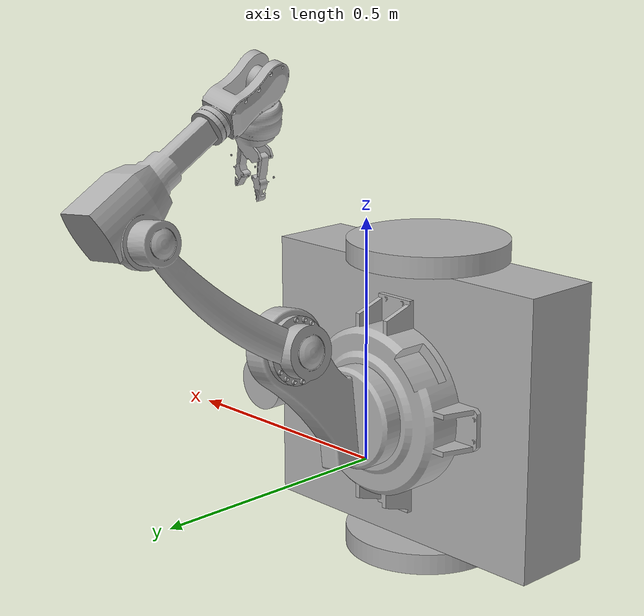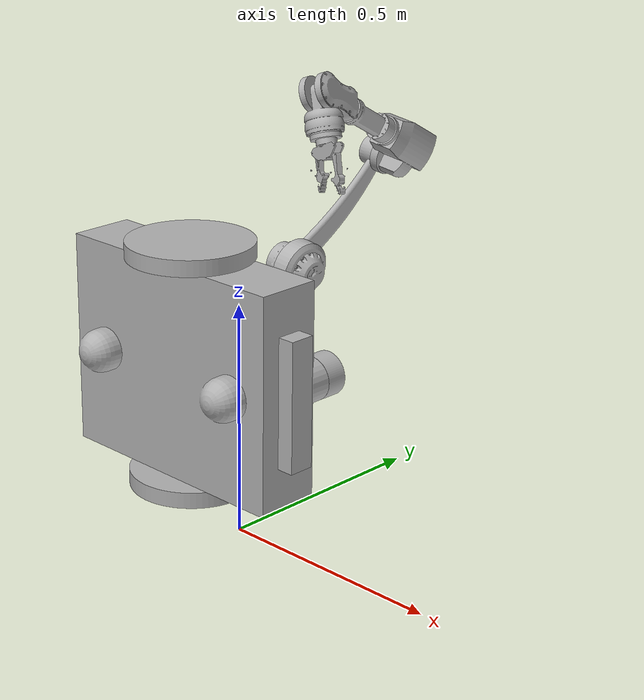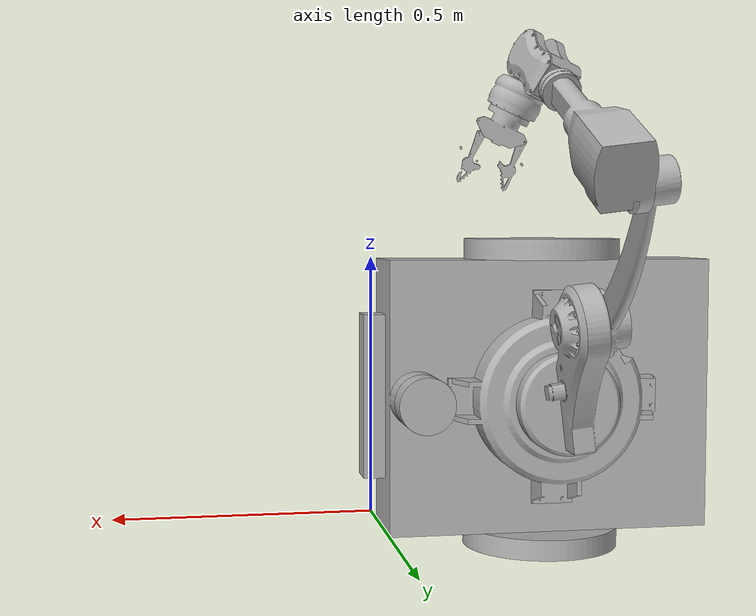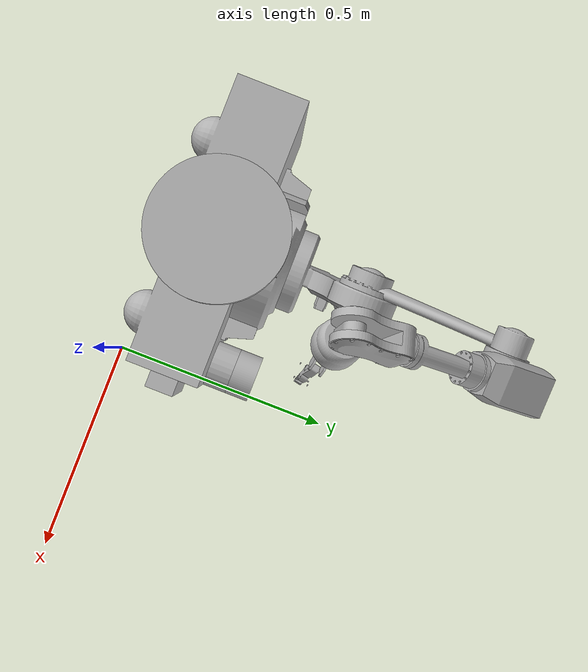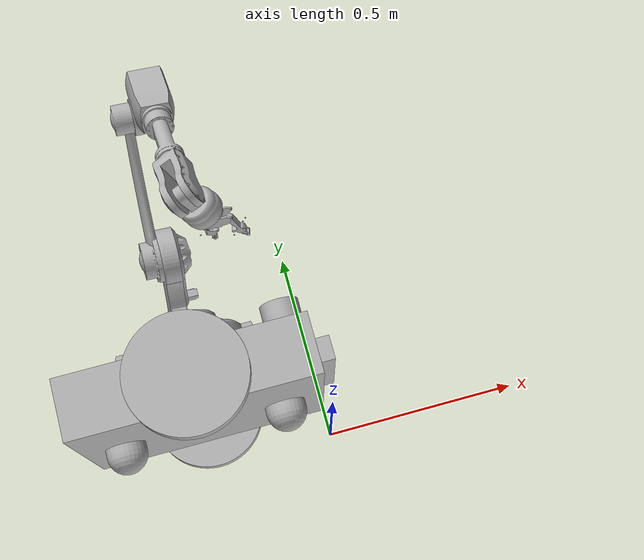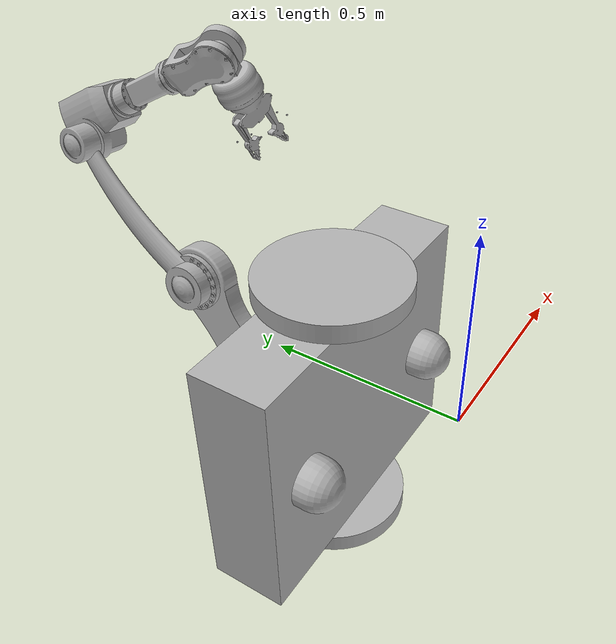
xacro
<?xml version="1.0" ?>
<robot name="moodz_V3" xmlns:xacro="http://www.ros.org/wiki/xacro">

<xacro:include filename="$(find moodz_V3_description)/urdf/materials.xacro" />
<xacro:include filename="$(find moodz_V3_description)/urdf/moodz_V3.trans" />
<xacro:include filename="$(find moodz_V3_description)/urdf/moodz_V3.gazebo" />
<link name="base_link">
  <inertial>
    <origin rpy="0 0 0" xyz="-0.46581722808526116 0.08938415217570221 0.18085867117796395"/>
    <mass value="48.99670859933122"/>
    <inertia ixx="1.097685" ixy="-0.01051" ixz="-6.1e-05" iyy="2.487245" iyz="-2.5e-05" izz="1.595947"/>
  </inertial>
  <visual>
    <origin rpy="0 0 0" xyz="0 0 0"/>
    <geometry>
      <mesh filename="package://moodz_V3_description/meshes/base_link.stl" scale="0.001 0.001 0.001"/>
    </geometry>
    <material name="silver"/>
  </visual>
  <collision>
    <origin rpy="0 0 0" xyz="0 0 0"/>
    <geometry>
      <mesh filename="package://moodz_V3_description/meshes/base_link.stl" scale="0.001 0.001 0.001"/>
    </geometry>
  </collision>
</link>

<link name="JAW_1_1">
  <inertial>
    <origin rpy="0 0 0" xyz="0.011146400355144637 0.08495399813413732 0.05831700033049275"/>
    <mass value="18.75878094663069"/>
    <inertia ixx="0.191428" ixy="-0.013466" ixz="-0.016464" iyy="0.132376" iyz="-0.073292" izz="0.100279"/>
  </inertial>
  <visual>
    <origin rpy="0 0 0" xyz="0.467941 -0.249381 -0.180854"/>
    <geometry>
      <mesh filename="package://moodz_V3_description/meshes/JAW_1_1.stl" scale="0.001 0.001 0.001"/>
    </geometry>
    <material name="silver"/>
  </visual>
  <collision>
    <origin rpy="0 0 0" xyz="0.467941 -0.249381 -0.180854"/>
    <geometry>
      <mesh filename="package://moodz_V3_description/meshes/JAW_1_1.stl" scale="0.001 0.001 0.001"/>
    </geometry>
  </collision>
</link>

<link name="JAW_2_1">
  <inertial>
    <origin rpy="0 0 0" xyz="-0.0055001589406244444 0.11193689172074517 0.08484701051399818"/>
    <mass value="6.328442247675211"/>
    <inertia ixx="0.134402" ixy="-0.008058" ixz="-0.006445" iyy="0.05509" iyz="-0.062654" izz="0.082904"/>
  </inertial>
  <visual>
    <origin rpy="0 0 0" xyz="0.46953 -0.409535 -0.332169"/>
    <geometry>
      <mesh filename="package://moodz_V3_description/meshes/JAW_2_1.stl" scale="0.001 0.001 0.001"/>
    </geometry>
    <material name="silver"/>
  </visual>
  <collision>
    <origin rpy="0 0 0" xyz="0.46953 -0.409535 -0.332169"/>
    <geometry>
      <mesh filename="package://moodz_V3_description/meshes/JAW_2_1.stl" scale="0.001 0.001 0.001"/>
    </geometry>
  </collision>
</link>

<link name="JAW_3_1">
  <inertial>
    <origin rpy="0 0 0" xyz="0.05280184332367599 -0.019496359311163558 0.049738034500531714"/>
    <mass value="11.40386436403121"/>
    <inertia ixx="0.066776" ixy="0.002958" ixz="-0.003295" iyy="0.029279" iyz="0.022156" izz="0.050723"/>
  </inertial>
  <visual>
    <origin rpy="0 0 0" xyz="0.442441 -0.67946 -0.553318"/>
    <geometry>
      <mesh filename="package://moodz_V3_description/meshes/JAW_3_1.stl" scale="0.001 0.001 0.001"/>
    </geometry>
    <material name="silver"/>
  </visual>
  <collision>
    <origin rpy="0 0 0" xyz="0.442441 -0.67946 -0.553318"/>
    <geometry>
      <mesh filename="package://moodz_V3_description/meshes/JAW_3_1.stl" scale="0.001 0.001 0.001"/>
    </geometry>
  </collision>
</link>

<link name="JAW_4_1">
  <inertial>
    <origin rpy="0 0 0" xyz="0.003562347374344743 -0.058849206124939324 0.032312847946089795"/>
    <mass value="3.736976429844003"/>
    <inertia ixx="0.009026" ixy="0.000207" ixz="-0.00034" iyy="0.004597" iyz="0.002638" izz="0.007945"/>
  </inertial>
  <visual>
    <origin rpy="0 0 0" xyz="0.375467 -0.486428 -0.705298"/>
    <geometry>
      <mesh filename="package://moodz_V3_description/meshes/JAW_4_1.stl" scale="0.001 0.001 0.001"/>
    </geometry>
    <material name="silver"/>
  </visual>
  <collision>
    <origin rpy="0 0 0" xyz="0.375467 -0.486428 -0.705298"/>
    <geometry>
      <mesh filename="package://moodz_V3_description/meshes/JAW_4_1.stl" scale="0.001 0.001 0.001"/>
    </geometry>
  </collision>
</link>

<link name="JAW_5_1">
  <inertial>
    <origin rpy="0 0 0" xyz="0.011876701380709898 -0.0146140282000925 -0.057094191810916683"/>
    <mass value="2.672375979830758"/>
    <inertia ixx="0.002711" ixy="6.6e-05" ixz="0.000275" iyy="0.002759" iyz="-0.000152" izz="0.002113"/>
  </inertial>
  <visual>
    <origin rpy="0 0 0" xyz="0.35729 -0.389031 -0.765003"/>
    <geometry>
      <mesh filename="package://moodz_V3_description/meshes/JAW_5_1.stl" scale="0.001 0.001 0.001"/>
    </geometry>
    <material name="silver"/>
  </visual>
  <collision>
    <origin rpy="0 0 0" xyz="0.35729 -0.389031 -0.765003"/>
    <geometry>
      <mesh filename="package://moodz_V3_description/meshes/JAW_5_1.stl" scale="0.001 0.001 0.001"/>
    </geometry>
  </collision>
</link>

<link name="JAW_6_1">
  <inertial>
    <origin rpy="0 0 0" xyz="0.0062798416351029784 -0.003243570533161655 -0.014730562269392067"/>
    <mass value="0.600174321482272"/>
    <inertia ixx="0.000264" ixy="5e-06" ixz="-2.3e-05" iyy="0.0003" iyz="5e-06" izz="0.000304"/>
  </inertial>
  <visual>
    <origin rpy="0 0 0" xyz="0.332082 -0.36742 -0.676247"/>
    <geometry>
      <mesh filename="package://moodz_V3_description/meshes/JAW_6_1.stl" scale="0.001 0.001 0.001"/>
    </geometry>
    <material name="silver"/>
  </visual>
  <collision>
    <origin rpy="0 0 0" xyz="0.332082 -0.36742 -0.676247"/>
    <geometry>
      <mesh filename="package://moodz_V3_description/meshes/JAW_6_1.stl" scale="0.001 0.001 0.001"/>
    </geometry>
  </collision>
</link>

<link name="JAW_7__2__1">
  <inertial>
    <origin rpy="0 0 0" xyz="0.01644535133494507 -0.014792855709221064 -0.032109312881303476"/>
    <mass value="0.11899227461667589"/>
    <inertia ixx="6.1e-05" ixy="5e-06" ixz="2.2e-05" iyy="7e-05" iyz="-1.1e-05" izz="1.8e-05"/>
  </inertial>
  <visual>
    <origin rpy="0 0 0" xyz="0.354389 -0.375049 -0.628577"/>
    <geometry>
      <mesh filename="package://moodz_V3_description/meshes/JAW_7__2__1.stl" scale="0.001 0.001 0.001"/>
    </geometry>
    <material name="silver"/>
  </visual>
  <collision>
    <origin rpy="0 0 0" xyz="0.354389 -0.375049 -0.628577"/>
    <geometry>
      <mesh filename="package://moodz_V3_description/meshes/JAW_7__2__1.stl" scale="0.001 0.001 0.001"/>
    </geometry>
  </collision>
</link>

<link name="JAW_7_1">
  <inertial>
    <origin rpy="0 0 0" xyz="0.006597045432837512 -0.01717131999646171 -0.0549242198909482"/>
    <mass value="0.11958259388428337"/>
    <inertia ixx="6.3e-05" ixy="5e-06" ixz="2e-05" iyy="6.9e-05" iyz="-1.2e-05" izz="1.6e-05"/>
  </inertial>
  <visual>
    <origin rpy="0 0 0" xyz="0.28086 -0.364212 -0.662307"/>
    <geometry>
      <mesh filename="package://moodz_V3_description/meshes/JAW_7_1.stl" scale="0.001 0.001 0.001"/>
    </geometry>
    <material name="silver"/>
  </visual>
  <collision>
    <origin rpy="0 0 0" xyz="0.28086 -0.364212 -0.662307"/>
    <geometry>
      <mesh filename="package://moodz_V3_description/meshes/JAW_7_1.stl" scale="0.001 0.001 0.001"/>
    </geometry>
  </collision>
</link>

<link name="BASE_1">
  <inertial>
    <origin rpy="0 0 0" xyz="0.0014419347697952056 0.03870945277366328 -0.0014260599463890578"/>
    <mass value="45.31428377967853"/>
    <inertia ixx="0.286619" ixy="-0.000299" ixz="-0.006278" iyy="0.523195" iyz="0.000324" izz="0.286478"/>
  </inertial>
  <visual>
    <origin rpy="0 0 0" xyz="0.467941 -0.165381 -0.180854"/>
    <geometry>
      <mesh filename="package://moodz_V3_description/meshes/BASE_1.stl" scale="0.001 0.001 0.001"/>
    </geometry>
    <material name="silver"/>
  </visual>
  <collision>
    <origin rpy="0 0 0" xyz="0.467941 -0.165381 -0.180854"/>
    <geometry>
      <mesh filename="package://moodz_V3_description/meshes/BASE_1.stl" scale="0.001 0.001 0.001"/>
    </geometry>
  </collision>
</link>

<link name="right_wheel_1">
  <inertial>
    <origin rpy="0 0 0" xyz="-1.2148733219419228e-07 -4.415074500441207e-09 0.01874962170952682"/>
    <mass value="2.2891426387213216"/>
    <inertia ixx="0.012225" ixy="-0.0" ixz="-0.0" iyy="0.012225" iyz="0.0" izz="0.023914"/>
  </inertial>
  <visual>
    <origin rpy="0 0 0" xyz="0.467941 -0.090381 -0.430854"/>
    <geometry>
      <mesh filename="package://moodz_V3_description/meshes/right_wheel_1.stl" scale="0.001 0.001 0.001"/>
    </geometry>
    <material name="silver"/>
  </visual>
  <collision>
    <origin rpy="0 0 0" xyz="0.467941 -0.090381 -0.430854"/>
    <geometry>
      <mesh filename="package://moodz_V3_description/meshes/right_wheel_1.stl" scale="0.001 0.001 0.001"/>
    </geometry>
  </collision>
</link>

<link name="left_wheel_1">
  <inertial>
    <origin rpy="0 0 0" xyz="-1.2148733191663652e-07 -4.415075235963961e-09 -0.018750378290472644"/>
    <mass value="2.2891426387213216"/>
    <inertia ixx="0.012225" ixy="-0.0" ixz="-0.0" iyy="0.012225" iyz="0.0" izz="0.023914"/>
  </inertial>
  <visual>
    <origin rpy="0 0 0" xyz="0.467941 -0.090381 0.069146"/>
    <geometry>
      <mesh filename="package://moodz_V3_description/meshes/left_wheel_1.stl" scale="0.001 0.001 0.001"/>
    </geometry>
    <material name="silver"/>
  </visual>
  <collision>
    <origin rpy="0 0 0" xyz="0.467941 -0.090381 0.069146"/>
    <geometry>
      <mesh filename="package://moodz_V3_description/meshes/left_wheel_1.stl" scale="0.001 0.001 0.001"/>
    </geometry>
  </collision>
</link>

<link name="lidar_1">
  <inertial>
    <origin rpy="0 0 0" xyz="3.457946113061272e-07 0.024999995584925327 -2.2062580068427096e-08"/>
    <mass value="0.559596191420682"/>
    <inertia ixx="0.000466" ixy="-0.0" ixz="-0.0" iyy="0.000699" iyz="0.0" izz="0.000466"/>
  </inertial>
  <visual>
    <origin rpy="0 0 0" xyz="0.217945 -0.215381 -0.181448"/>
    <geometry>
      <mesh filename="package://moodz_V3_description/meshes/lidar_1.stl" scale="0.001 0.001 0.001"/>
    </geometry>
    <material name="silver"/>
  </visual>
  <collision>
    <origin rpy="0 0 0" xyz="0.217945 -0.215381 -0.181448"/>
    <geometry>
      <mesh filename="package://moodz_V3_description/meshes/lidar_1.stl" scale="0.001 0.001 0.001"/>
    </geometry>
  </collision>
</link>

<link name="camera_1">
  <inertial>
    <origin rpy="0 0 0" xyz="0.019999878512669045 -4.415075235963961e-09 -3.7829047316861875e-07"/>
    <mass value="1.0259999999999998"/>
    <inertia ixx="0.008003" ixy="-0.0" ixz="-0.0" iyy="0.007832" iyz="-0.0" izz="0.000445"/>
  </inertial>
  <visual>
    <origin rpy="0 0 0" xyz="0.167941 -0.090381 -0.180854"/>
    <geometry>
      <mesh filename="package://moodz_V3_description/meshes/camera_1.stl" scale="0.001 0.001 0.001"/>
    </geometry>
    <material name="silver"/>
  </visual>
  <collision>
    <origin rpy="0 0 0" xyz="0.167941 -0.090381 -0.180854"/>
    <geometry>
      <mesh filename="package://moodz_V3_description/meshes/camera_1.stl" scale="0.001 0.001 0.001"/>
    </geometry>
  </collision>
</link>

<joint name="Rev1" type="continuous">
  <origin rpy="0 0 0" xyz="0.0 0.084 0.0"/>
  <parent link="BASE_1"/>
  <child link="JAW_1_1"/>
  <axis xyz="-0.0 1.0 -0.0"/>
</joint>

<joint name="Rev2" type="continuous">
  <origin rpy="0 0 0" xyz="-0.001589 0.160154 0.151315"/>
  <parent link="JAW_1_1"/>
  <child link="JAW_2_1"/>
  <axis xyz="-0.992582 0.0 0.121581"/>
</joint>

<joint name="Rev3" type="continuous">
  <origin rpy="0 0 0" xyz="0.027089 0.269925 0.221149"/>
  <parent link="JAW_2_1"/>
  <child link="JAW_3_1"/>
  <axis xyz="0.992582 -0.0 -0.121581"/>
</joint>

<joint name="Rev4" type="continuous">
  <origin rpy="0 0 0" xyz="0.066974 -0.193032 0.15198"/>
  <parent link="JAW_3_1"/>
  <child link="JAW_4_1"/>
  <axis xyz="0.05915 -0.873678 0.482895"/>
</joint>

<joint name="Rev5" type="continuous">
  <origin rpy="0 0 0" xyz="0.018177 -0.097397 0.059705"/>
  <parent link="JAW_4_1"/>
  <child link="JAW_5_1"/>
  <axis xyz="-0.909984 -0.246069 -0.333736"/>
</joint>

<joint name="Rev6" type="continuous">
  <origin rpy="0 0 0" xyz="0.025208 -0.021611 -0.088756"/>
  <parent link="JAW_5_1"/>
  <child link="JAW_6_1"/>
  <axis xyz="0.384337 -0.198491 -0.901602"/>
</joint>

<joint name="Rev7" type="continuous">
  <origin rpy="0 0 0" xyz="-0.022307 0.007629 -0.04767"/>
  <parent link="JAW_6_1"/>
  <child link="JAW_7__2__1"/>
  <axis xyz="-0.201738 -0.971068 0.127787"/>
</joint>

<joint name="Rev8" type="continuous">
  <origin rpy="0 0 0" xyz="0.051222 -0.003208 -0.01394"/>
  <parent link="JAW_6_1"/>
  <child link="JAW_7_1"/>
  <axis xyz="-0.201738 -0.971068 0.127787"/>
</joint>

<joint name="Rev9" type="continuous">
  <origin rpy="0 0 0" xyz="-0.467941 0.165381 0.180854"/>
  <parent link="base_link"/>
  <child link="BASE_1"/>
  <axis xyz="-0.0 1.0 -0.0"/>
</joint>

<joint name="Rev10" type="continuous">
  <origin rpy="0 0 0" xyz="-0.467941 0.090381 0.430854"/>
  <parent link="base_link"/>
  <child link="right_wheel_1"/>
  <axis xyz="-0.0 0.0 1.0"/>
</joint>

<joint name="Rev11" type="continuous">
  <origin rpy="0 0 0" xyz="-0.467941 0.090381 -0.069146"/>
  <parent link="base_link"/>
  <child link="left_wheel_1"/>
  <axis xyz="0.0 -0.0 -1.0"/>
</joint>

<joint name="Rev12" type="continuous">
  <origin rpy="0 0 0" xyz="-0.217945 0.215381 0.181448"/>
  <parent link="base_link"/>
  <child link="lidar_1"/>
  <axis xyz="-0.0 1.0 -0.0"/>
</joint>

<joint name="Rigid13" type="fixed">
  <origin rpy="0 0 0" xyz="-0.167941 0.090381 0.180854"/>
  <parent link="base_link"/>
  <child link="camera_1"/>
</joint>

</robot>

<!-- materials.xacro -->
<robot name="moodz_V3" xmlns:xacro="http://www.ros.org/wiki/xacro" >

<material name="silver">
  <color rgba="0.700 0.700 0.700 1.000"/>
</material>

</robot>

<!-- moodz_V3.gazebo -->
<robot name="moodz_V3" xmlns:xacro="http://www.ros.org/wiki/xacro" >

<xacro:property name="body_color" value="Gazebo/Silver" />

<gazebo>
  <plugin filename="libgazebo_ros_control.so" name="control"/>
</gazebo>
<gazebo reference="base_link">
  <material>${body_color}</material>
  <mu1>0.2</mu1>
  <mu2>0.2</mu2>
  <selfCollide>true</selfCollide>
  <gravity>true</gravity>
</gazebo>

<gazebo reference="JAW_1_1">
  <material>${body_color}</material>
  <mu1>0.2</mu1>
  <mu2>0.2</mu2>
  <selfCollide>true</selfCollide>
</gazebo>

<gazebo reference="JAW_2_1">
  <material>${body_color}</material>
  <mu1>0.2</mu1>
  <mu2>0.2</mu2>
  <selfCollide>true</selfCollide>
</gazebo>

<gazebo reference="JAW_3_1">
  <material>${body_color}</material>
  <mu1>0.2</mu1>
  <mu2>0.2</mu2>
  <selfCollide>true</selfCollide>
</gazebo>

<gazebo reference="JAW_4_1">
  <material>${body_color}</material>
  <mu1>0.2</mu1>
  <mu2>0.2</mu2>
  <selfCollide>true</selfCollide>
</gazebo>

<gazebo reference="JAW_5_1">
  <material>${body_color}</material>
  <mu1>0.2</mu1>
  <mu2>0.2</mu2>
  <selfCollide>true</selfCollide>
</gazebo>

<gazebo reference="JAW_6_1">
  <material>${body_color}</material>
  <mu1>0.2</mu1>
  <mu2>0.2</mu2>
  <selfCollide>true</selfCollide>
</gazebo>

<gazebo reference="JAW_7__2__1">
  <material>${body_color}</material>
  <mu1>0.2</mu1>
  <mu2>0.2</mu2>
  <selfCollide>true</selfCollide>
</gazebo>

<gazebo reference="JAW_7_1">
  <material>${body_color}</material>
  <mu1>0.2</mu1>
  <mu2>0.2</mu2>
  <selfCollide>true</selfCollide>
</gazebo>

<gazebo reference="BASE_1">
  <material>${body_color}</material>
  <mu1>0.2</mu1>
  <mu2>0.2</mu2>
  <selfCollide>true</selfCollide>
</gazebo>

<gazebo reference="right_wheel_1">
  <material>${body_color}</material>
  <mu1>0.2</mu1>
  <mu2>0.2</mu2>
  <selfCollide>true</selfCollide>
</gazebo>

<gazebo reference="left_wheel_1">
  <material>${body_color}</material>
  <mu1>0.2</mu1>
  <mu2>0.2</mu2>
  <selfCollide>true</selfCollide>
</gazebo>

<gazebo reference="lidar_1">
  <material>${body_color}</material>
  <mu1>0.2</mu1>
  <mu2>0.2</mu2>
  <selfCollide>true</selfCollide>
</gazebo>

<gazebo reference="camera_1">
  <material>${body_color}</material>
  <mu1>0.2</mu1>
  <mu2>0.2</mu2>
  <selfCollide>true</selfCollide>
</gazebo>

</robot>
